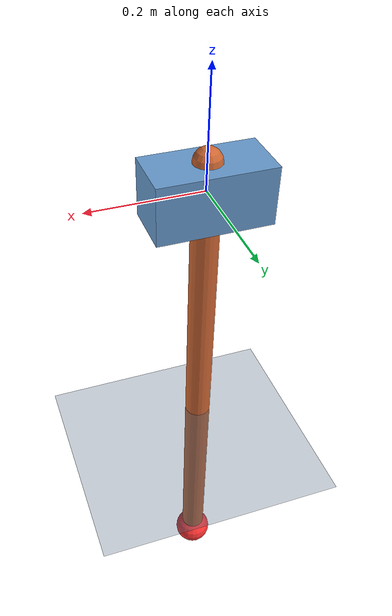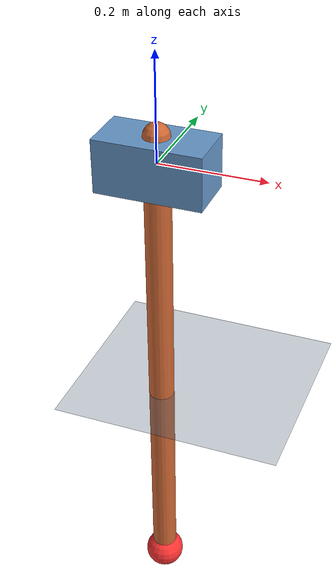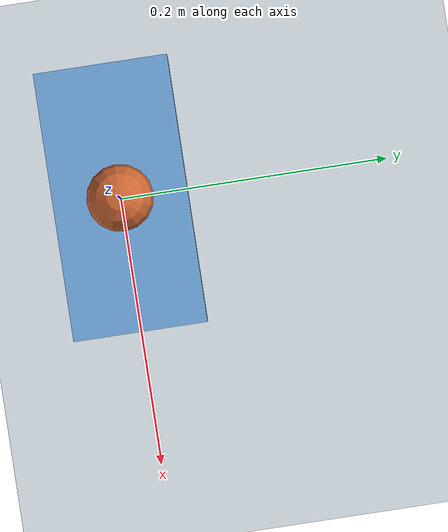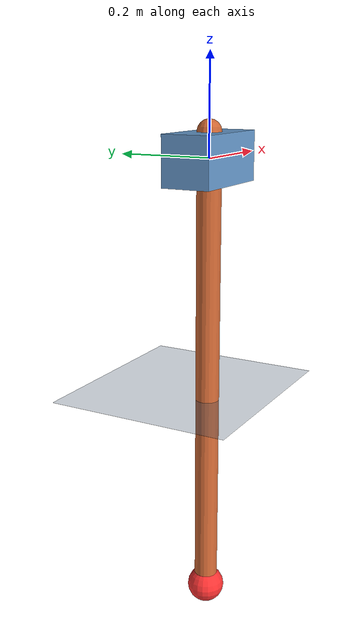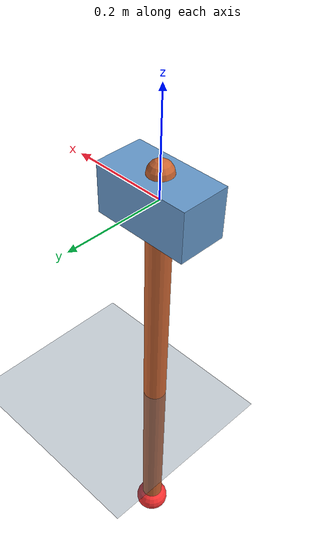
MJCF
<mujoco model="cartpole2d">
  <option gravity="0 0 -9.81" timestep="0.002" integrator="RK4"/>

  <asset>
    <texture name="checker" type="2d" builtin="checker" width="512" height="512"
             rgb1="0.2 0.3 0.4" rgb2="0.3 0.4 0.5"/>
    <material name="floor_mat" texture="checker" texrepeat="5 5" reflectance="0.1"/>
  </asset>

  <worldbody>
    <light name="sun" directional="true" pos="0 0 4" dir="0 -0.3 -1" diffuse="0.8 0.8 0.8" specular="0.2 0.2 0.2"/>
    <geom name="floor" type="plane" size="5 5 0.1" material="floor_mat" pos="0 0 -0.5"/>

    <!-- Slider joint on x-axis carries the cart. Range ±2.4 m. -->
    <body name="cart" pos="0 0 0">
      <joint name="slider" type="slide" axis="1 0 0" range="-2.4 2.4" damping="0.5"/>
      <geom name="cart_geom" type="box" size="0.1 0.05 0.05" mass="1.0"
            rgba="0.4 0.6 0.8 1" condim="1"/>

      <body name="pole" pos="0 0 0.05">
        <joint name="hinge" type="hinge" axis="0 1 0" damping="0.01"/>
        <!-- fromto points DOWN so qpos[hinge]=0 → pole hangs, qpos[hinge]=pi → pole is upright -->
        <geom name="pole_geom" type="capsule" fromto="0 0 0 0 0 -1.0"
              size="0.025" mass="0.1" rgba="0.8 0.4 0.2 1"/>
        <!-- Small sphere to mark the pole tip (upright = z+1 relative to hinge body) -->
        <geom name="pole_tip" type="sphere" size="0.04" pos="0 0 -1.0"
              rgba="1.0 0.2 0.2 1" mass="0"/>
      </body>
    </body>
  </worldbody>

  <actuator>
    <!-- gear=10 maps action ∈ [-1,1] → force ∈ [-10,10] N on the slider -->
    <motor name="slide_motor" joint="slider" gear="10" ctrlrange="-1 1" ctrllimited="true"/>
  </actuator>

</mujoco>
